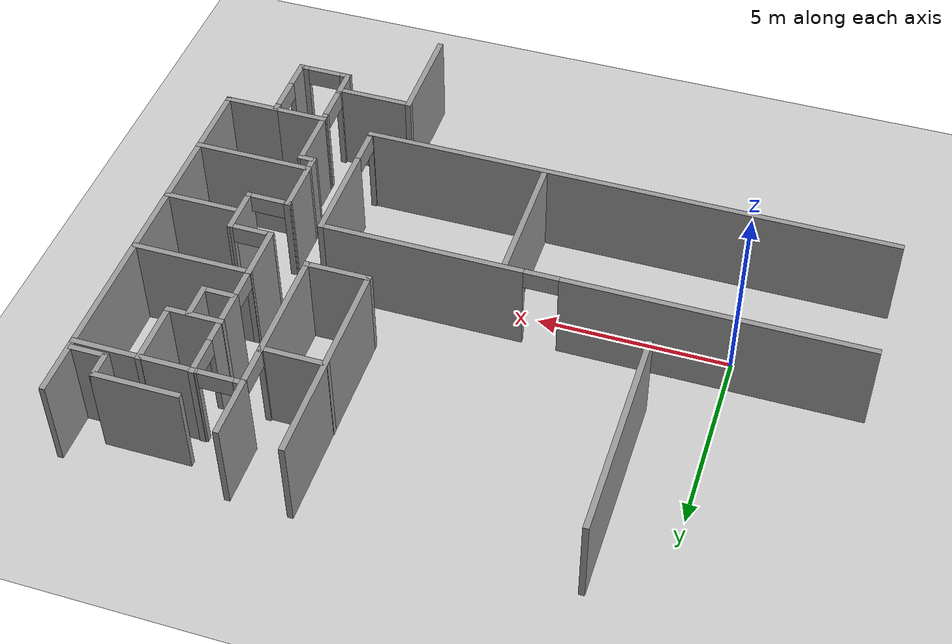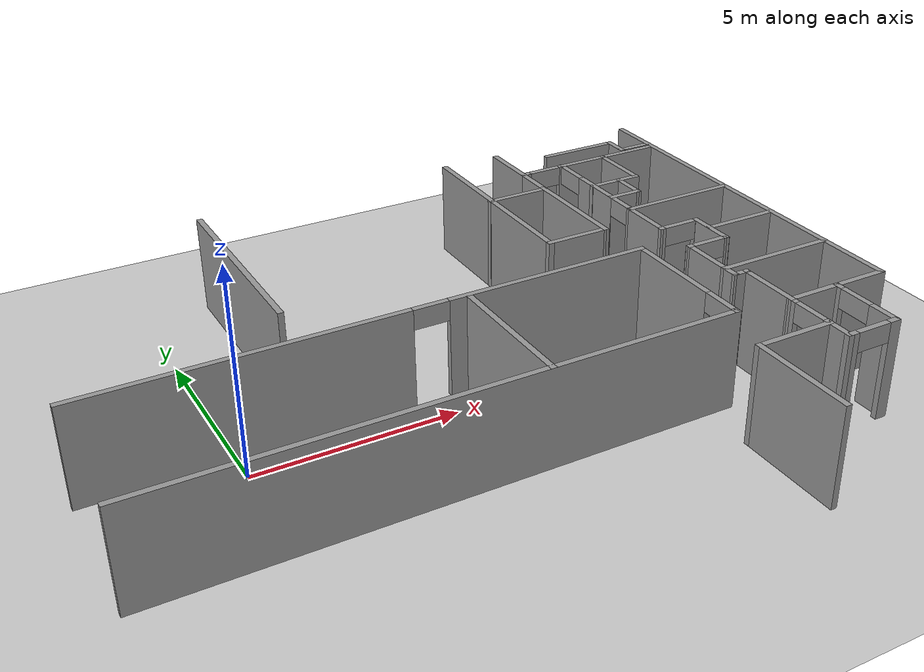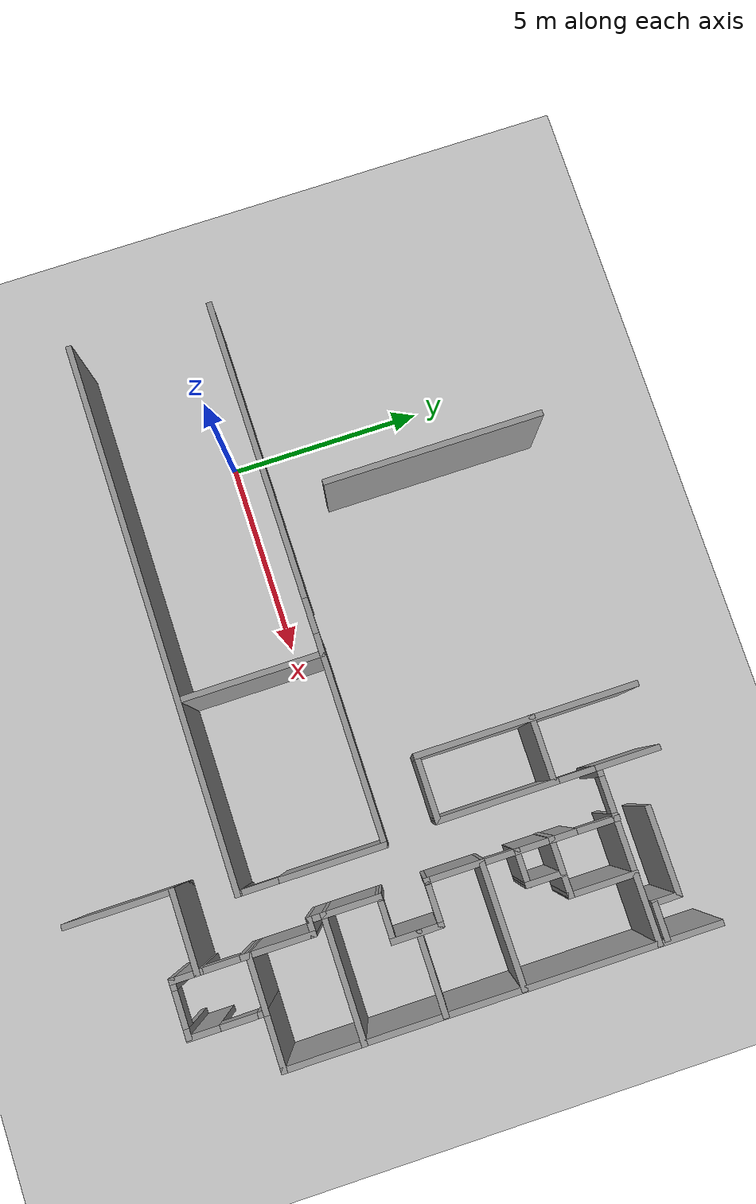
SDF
<sdf version="1.6">
 <world name="default">
  <model name="ground_plane">
   <static>1</static>
   <link name="link">
    <collision name="collision">
     <geometry><plane><normal>0 0 1</normal><size>100 100</size></plane></geometry>
     <surface><friction><ode><mu>100</mu><mu2>50</mu2></ode></friction></surface>
    </collision>
    <visual name="visual">
     <cast_shadows>0</cast_shadows>
     <geometry><plane><normal>0 0 1</normal><size>100 100</size></plane></geometry>
     <material>
      <script><uri>file://media/materials/scripts/gazebo.material</uri><name>Gazebo/Grey</name></script>
     </material>
    </visual>
   </link>
  </model>
  <model name="deh_f1">
   <pose>0.520969 0.357811 0 0 -0 0</pose>
   <link name="Wall_10">
    <collision name="Wall_10_Collision">
     <geometry><box><size>0.75 0.15 2.5</size></box></geometry>
     <pose>0 0 1.25 0 -0 0</pose>
    </collision>
    <visual name="Wall_10_Visual">
     <pose>0 0 1.25 0 -0 0</pose>
     <geometry><box><size>0.75 0.15 2.5</size></box></geometry>
     <material>
      <script><uri>file://media/materials/scripts/gazebo.material</uri><name>Gazebo/Grey</name></script>
      <ambient>1 1 1 1</ambient>
     </material>
    </visual>
    <pose>11.348 -4.92647 0 0 -0 1.5708</pose>
   </link>
   <link name="Wall_107">
    <collision name="Wall_107_Collision">
     <geometry><box><size>5.62515 0.15 2.5</size></box></geometry>
     <pose>0 0 1.25 0 -0 0</pose>
    </collision>
    <visual name="Wall_107_Visual">
     <pose>0 0 1.25 0 -0 0</pose>
     <geometry><box><size>5.62515 0.15 2.5</size></box></geometry>
     <material>
      <script><uri>file://media/materials/scripts/gazebo.material</uri><name>Gazebo/Grey</name></script>
      <ambient>1 1 1 1</ambient>
     </material>
    </visual>
    <pose>1.21165 4.48247 0 0 0 -1.5708</pose>
   </link>
   <link name="Wall_109">
    <collision name="Wall_109_Collision">
     <geometry><box><size>1.75 0.15 2.5</size></box></geometry>
     <pose>0 0 1.25 0 -0 0</pose>
    </collision>
    <visual name="Wall_109_Visual">
     <pose>0 0 1.25 0 -0 0</pose>
     <geometry><box><size>1.75 0.15 2.5</size></box></geometry>
     <material>
      <script><uri>file://media/materials/scripts/gazebo.material</uri><name>Gazebo/Grey</name></script>
      <ambient>1 1 1 1</ambient>
     </material>
    </visual>
    <pose>8.97986 1.75239 0 0 -0 0</pose>
   </link>
   <link name="Wall_110">
    <pose>9.77348 4.47484 0 0 -0 1.57314</pose>
    <visual name="Wall_110_Visual_0">
     <pose>-1.26286 0 1.25 0 -0 0</pose>
     <geometry><box><size>3.06917 0.15 2.5</size></box></geometry>
     <material>
      <script><uri>file://media/materials/scripts/gazebo.material</uri><name>Gazebo/Grey</name></script>
      <ambient>1 1 1 1</ambient>
     </material>
    </visual>
    <collision name="Wall_110_Collision_0">
     <geometry><box><size>3.06917 0.15 2.5</size></box></geometry>
     <pose>-1.26286 0 1.25 0 -0 0</pose>
    </collision>
    <visual name="Wall_110_Visual_1">
     <pose>1.98459 0 1.25 0 -0 0</pose>
     <geometry><box><size>1.62573 0.15 2.5</size></box></geometry>
     <material>
      <script><uri>file://media/materials/scripts/gazebo.material</uri><name>Gazebo/Grey</name></script>
      <ambient>1 1 1 1</ambient>
     </material>
    </visual>
    <collision name="Wall_110_Collision_1">
     <geometry><box><size>1.62573 0.15 2.5</size></box></geometry>
     <pose>1.98459 0 1.25 0 -0 0</pose>
    </collision>
    <visual name="Wall_110_Visual_2">
     <pose>0.721725 0 2.25 0 -0 0</pose>
     <geometry><box><size>0.9 0.15 0.5</size></box></geometry>
     <material>
      <script><uri>file://media/materials/scripts/gazebo.material</uri><name>Gazebo/Grey</name></script>
      <ambient>1 1 1 1</ambient>
     </material>
    </visual>
    <collision name="Wall_110_Collision_2">
     <geometry><box><size>0.9 0.15 0.5</size></box></geometry>
     <pose>0.721725 0 2.25 0 -0 0</pose>
    </collision>
   </link>
   <link name="Wall_114">
    <pose>11.9124 5.72672 0 0 -0 0</pose>
    <visual name="Wall_114_Visual_0">
     <pose>-2.0611 0 1.25 0 -0 0</pose>
     <geometry><box><size>0.273024 0.15 2.5</size></box></geometry>
     <material>
      <script><uri>file://media/materials/scripts/gazebo.material</uri><name>Gazebo/Grey</name></script>
      <ambient>1 1 1 1</ambient>
     </material>
    </visual>
    <collision name="Wall_114_Collision_0">
     <geometry><box><size>0.273024 0.15 2.5</size></box></geometry>
     <pose>-2.0611 0 1.25 0 -0 0</pose>
    </collision>
    <visual name="Wall_114_Visual_1">
     <pose>0.586512 0 1.25 0 -0 0</pose>
     <geometry><box><size>3.2222 0.15 2.5</size></box></geometry>
     <material>
      <script><uri>file://media/materials/scripts/gazebo.material</uri><name>Gazebo/Grey</name></script>
      <ambient>1 1 1 1</ambient>
     </material>
    </visual>
    <collision name="Wall_114_Collision_1">
     <geometry><box><size>3.2222 0.15 2.5</size></box></geometry>
     <pose>0.586512 0 1.25 0 -0 0</pose>
    </collision>
    <visual name="Wall_114_Visual_2">
     <pose>-1.47459 0 2.25 0 -0 0</pose>
     <geometry><box><size>0.9 0.15 0.5</size></box></geometry>
     <material>
      <script><uri>file://media/materials/scripts/gazebo.material</uri><name>Gazebo/Grey</name></script>
      <ambient>1 1 1 1</ambient>
     </material>
    </visual>
    <collision name="Wall_114_Collision_2">
     <geometry><box><size>0.9 0.15 0.5</size></box></geometry>
     <pose>-1.47459 0 2.25 0 -0 0</pose>
    </collision>
   </link>
   <link name="Wall_116">
    <pose>11.0229 4.08144 0 0 0 -1.5708</pose>
    <visual name="Wall_116_Visual_0">
     <pose>-1.65988 0 1.25 0 -0 0</pose>
     <geometry><box><size>0.160376 0.15 2.5</size></box></geometry>
     <material>
      <script><uri>file://media/materials/scripts/gazebo.material</uri><name>Gazebo/Grey</name></script>
      <ambient>1 1 1 1</ambient>
     </material>
    </visual>
    <collision name="Wall_116_Collision_0">
     <geometry><box><size>0.160376 0.15 2.5</size></box></geometry>
     <pose>-1.65988 0 1.25 0 -0 0</pose>
    </collision>
    <visual name="Wall_116_Visual_1">
     <pose>0.093656 0 1.25 0 -0 0</pose>
     <geometry><box><size>1.54669 0.15 2.5</size></box></geometry>
     <material>
      <script><uri>file://media/materials/scripts/gazebo.material</uri><name>Gazebo/Grey</name></script>
      <ambient>1 1 1 1</ambient>
     </material>
    </visual>
    <collision name="Wall_116_Collision_1">
     <geometry><box><size>1.54669 0.15 2.5</size></box></geometry>
     <pose>0.093656 0 1.25 0 -0 0</pose>
    </collision>
    <visual name="Wall_116_Visual_2">
     <pose>1.66388 0 1.25 0 -0 0</pose>
     <geometry><box><size>0.152369 0.15 2.5</size></box></geometry>
     <material>
      <script><uri>file://media/materials/scripts/gazebo.material</uri><name>Gazebo/Grey</name></script>
      <ambient>1 1 1 1</ambient>
     </material>
    </visual>
    <collision name="Wall_116_Collision_2">
     <geometry><box><size>0.152369 0.15 2.5</size></box></geometry>
     <pose>1.66388 0 1.25 0 -0 0</pose>
    </collision>
    <visual name="Wall_116_Visual_3">
     <pose>-1.12969 0 2.25 0 -0 0</pose>
     <geometry><box><size>0.9 0.15 0.5</size></box></geometry>
     <material>
      <script><uri>file://media/materials/scripts/gazebo.material</uri><name>Gazebo/Grey</name></script>
      <ambient>1 1 1 1</ambient>
     </material>
    </visual>
    <collision name="Wall_116_Collision_3">
     <geometry><box><size>0.9 0.15 0.5</size></box></geometry>
     <pose>-1.12969 0 2.25 0 -0 0</pose>
    </collision>
    <visual name="Wall_116_Visual_4">
     <pose>1.22735 0 2.25 0 -0 0</pose>
     <geometry><box><size>0.720696 0.15 0.5</size></box></geometry>
     <material>
      <script><uri>file://media/materials/scripts/gazebo.material</uri><name>Gazebo/Grey</name></script>
      <ambient>1 1 1 1</ambient>
     </material>
    </visual>
    <collision name="Wall_116_Collision_4">
     <geometry><box><size>0.720696 0.15 0.5</size></box></geometry>
     <pose>1.22735 0 2.25 0 -0 0</pose>
    </collision>
   </link>
   <link name="Wall_117">
    <collision name="Wall_117_Collision">
     <geometry><box><size>3.16787 0.15 2.5</size></box></geometry>
     <pose>0 0 1.25 0 -0 0</pose>
    </collision>
    <visual name="Wall_117_Visual">
     <pose>0 0 1.25 0 -0 0</pose>
     <geometry><box><size>3.16787 0.15 2.5</size></box></geometry>
     <material>
      <script><uri>file://media/materials/scripts/gazebo.material</uri><name>Gazebo/Grey</name></script>
      <ambient>1 1 1 1</ambient>
     </material>
    </visual>
    <pose>12.5218 2.4204 0 0 -0 0.002627</pose>
   </link>
   <link name="Wall_119">
    <collision name="Wall_119_Collision">
     <geometry><box><size>1.5 0.15 2.5</size></box></geometry>
     <pose>0 0 1.25 0 -0 0</pose>
    </collision>
    <visual name="Wall_119_Visual">
     <pose>0 0 1.25 0 -0 0</pose>
     <geometry><box><size>1.5 0.15 2.5</size></box></geometry>
     <material>
      <script><uri>file://media/materials/scripts/gazebo.material</uri><name>Gazebo/Grey</name></script>
      <ambient>1 1 1 1</ambient>
     </material>
    </visual>
    <pose>11.6872 4.13684 0 0 -0 0</pose>
   </link>
   <link name="Wall_12">
    <collision name="Wall_12_Collision">
     <geometry><box><size>2.75 0.15 2.5</size></box></geometry>
     <pose>0 0 1.25 0 -0 0</pose>
    </collision>
    <visual name="Wall_12_Visual">
     <pose>0 0 1.25 0 -0 0</pose>
     <geometry><box><size>2.75 0.15 2.5</size></box></geometry>
     <material>
      <script><uri>file://media/materials/scripts/gazebo.material</uri><name>Gazebo/Grey</name></script>
      <ambient>1 1 1 1</ambient>
     </material>
    </visual>
    <pose>9.39804 -5.92647 0 0 -0 1.5708</pose>
   </link>
   <link name="Wall_120">
    <collision name="Wall_120_Collision">
     <geometry><box><size>1.75 0.15 2.5</size></box></geometry>
     <pose>0 0 1.25 0 -0 0</pose>
    </collision>
    <visual name="Wall_120_Visual">
     <pose>0 0 1.25 0 -0 0</pose>
     <geometry><box><size>1.75 0.15 2.5</size></box></geometry>
     <material>
      <script><uri>file://media/materials/scripts/gazebo.material</uri><name>Gazebo/Grey</name></script>
      <ambient>1 1 1 1</ambient>
     </material>
    </visual>
    <pose>12.3622 4.93684 0 0 -0 1.5708</pose>
   </link>
   <link name="Wall_122">
    <collision name="Wall_122_Collision">
     <geometry><box><size>1 0.15 2.5</size></box></geometry>
     <pose>0 0 1.25 0 -0 0</pose>
    </collision>
    <visual name="Wall_122_Visual">
     <pose>0 0 1.25 0 -0 0</pose>
     <geometry><box><size>1 0.15 2.5</size></box></geometry>
     <material>
      <script><uri>file://media/materials/scripts/gazebo.material</uri><name>Gazebo/Grey</name></script>
      <ambient>1 1 1 1</ambient>
     </material>
    </visual>
    <pose>11.8301 3.70041 0 0 0 -1.5708</pose>
   </link>
   <link name="Wall_123">
    <collision name="Wall_123_Collision">
     <geometry><box><size>0.951518 0.15 2.5</size></box></geometry>
     <pose>0 0 1.25 0 -0 0</pose>
    </collision>
    <visual name="Wall_123_Visual">
     <pose>0 0 1.25 0 -0 0</pose>
     <geometry><box><size>0.951518 0.15 2.5</size></box></geometry>
     <material>
      <script><uri>file://media/materials/scripts/gazebo.material</uri><name>Gazebo/Grey</name></script>
      <ambient>1 1 1 1</ambient>
     </material>
    </visual>
    <pose>11.4294 3.27697 0 0 -0 3.1377</pose>
   </link>
   <link name="Wall_125">
    <collision name="Wall_125_Collision">
     <geometry><box><size>1.75 0.15 2.5</size></box></geometry>
     <pose>0 0 1.25 0 -0 0</pose>
    </collision>
    <visual name="Wall_125_Visual">
     <pose>0 0 1.25 0 -0 0</pose>
     <geometry><box><size>1.75 0.15 2.5</size></box></geometry>
     <material>
      <script><uri>file://media/materials/scripts/gazebo.material</uri><name>Gazebo/Grey</name></script>
      <ambient>1 1 1 1</ambient>
     </material>
    </visual>
    <pose>8.97011 4.62775 0 0 -0 3.14159</pose>
   </link>
   <link name="Wall_127">
    <collision name="Wall_127_Collision">
     <geometry><box><size>14 0.15 2.5</size></box></geometry>
     <pose>0 0 1.25 0 -0 0</pose>
    </collision>
    <visual name="Wall_127_Visual">
     <pose>0 0 1.25 0 -0 0</pose>
     <geometry><box><size>14 0.15 2.5</size></box></geometry>
     <material>
      <script><uri>file://media/materials/scripts/gazebo.material</uri><name>Gazebo/Grey</name></script>
      <ambient>1 1 1 1</ambient>
     </material>
    </visual>
    <pose>3.00654 -3.2072 0 0 -0 0</pose>
   </link>
   <link name="Wall_128">
    <pose>9.93154 -1.4072 0 0 -0 1.5708</pose>
    <visual name="Wall_128_Visual_0">
     <pose>-1.78467 0 1.25 0 -0 0</pose>
     <geometry><box><size>0.180652 0.15 2.5</size></box></geometry>
     <material>
      <script><uri>file://media/materials/scripts/gazebo.material</uri><name>Gazebo/Grey</name></script>
      <ambient>1 1 1 1</ambient>
     </material>
    </visual>
    <collision name="Wall_128_Collision_0">
     <geometry><box><size>0.180652 0.15 2.5</size></box></geometry>
     <pose>-1.78467 0 1.25 0 -0 0</pose>
    </collision>
    <visual name="Wall_128_Visual_1">
     <pose>0.540326 0 1.25 0 -0 0</pose>
     <geometry><box><size>2.66935 0.15 2.5</size></box></geometry>
     <material>
      <script><uri>file://media/materials/scripts/gazebo.material</uri><name>Gazebo/Grey</name></script>
      <ambient>1 1 1 1</ambient>
     </material>
    </visual>
    <collision name="Wall_128_Collision_1">
     <geometry><box><size>2.66935 0.15 2.5</size></box></geometry>
     <pose>0.540326 0 1.25 0 -0 0</pose>
    </collision>
    <visual name="Wall_128_Visual_2">
     <pose>-1.24435 0 2.25 0 -0 0</pose>
     <geometry><box><size>0.9 0.15 0.5</size></box></geometry>
     <material>
      <script><uri>file://media/materials/scripts/gazebo.material</uri><name>Gazebo/Grey</name></script>
      <ambient>1 1 1 1</ambient>
     </material>
    </visual>
    <collision name="Wall_128_Collision_2">
     <geometry><box><size>0.9 0.15 0.5</size></box></geometry>
     <pose>-1.24435 0 2.25 0 -0 0</pose>
    </collision>
   </link>
   <link name="Wall_129">
    <pose>3.00654 0.392797 0 0 -0 3.14159</pose>
    <visual name="Wall_129_Visual_0">
     <pose>-4.33483 0 1.25 0 -0 0</pose>
     <geometry><box><size>5.33035 0.15 2.5</size></box></geometry>
     <material>
      <script><uri>file://media/materials/scripts/gazebo.material</uri><name>Gazebo/Grey</name></script>
      <ambient>1 1 1 1</ambient>
     </material>
    </visual>
    <collision name="Wall_129_Collision_0">
     <geometry><box><size>5.33035 0.15 2.5</size></box></geometry>
     <pose>-4.33483 0 1.25 0 -0 0</pose>
    </collision>
    <visual name="Wall_129_Visual_1">
     <pose>3.11517 0 1.25 0 -0 0</pose>
     <geometry><box><size>7.76965 0.15 2.5</size></box></geometry>
     <material>
      <script><uri>file://media/materials/scripts/gazebo.material</uri><name>Gazebo/Grey</name></script>
      <ambient>1 1 1 1</ambient>
     </material>
    </visual>
    <collision name="Wall_129_Collision_1">
     <geometry><box><size>7.76965 0.15 2.5</size></box></geometry>
     <pose>3.11517 0 1.25 0 -0 0</pose>
    </collision>
    <visual name="Wall_129_Visual_2">
     <pose>-1.21965 0 2.25 0 -0 0</pose>
     <geometry><box><size>0.9 0.15 0.5</size></box></geometry>
     <material>
      <script><uri>file://media/materials/scripts/gazebo.material</uri><name>Gazebo/Grey</name></script>
      <ambient>1 1 1 1</ambient>
     </material>
    </visual>
    <collision name="Wall_129_Collision_2">
     <geometry><box><size>0.9 0.15 0.5</size></box></geometry>
     <pose>-1.21965 0 2.25 0 -0 0</pose>
    </collision>
   </link>
   <link name="Wall_13">
    <collision name="Wall_13_Collision">
     <geometry><box><size>2.1 0.15 2.5</size></box></geometry>
     <pose>0 0 1.25 0 -0 0</pose>
    </collision>
    <visual name="Wall_13_Visual">
     <pose>0 0 1.25 0 -0 0</pose>
     <geometry><box><size>2.1 0.15 2.5</size></box></geometry>
     <material>
      <script><uri>file://media/materials/scripts/gazebo.material</uri><name>Gazebo/Grey</name></script>
      <ambient>1 1 1 1</ambient>
     </material>
    </visual>
    <pose>10.373 -4.62647 0 0 -0 0</pose>
   </link>
   <link name="Wall_132">
    <collision name="Wall_132_Collision">
     <geometry><box><size>3.7189 0.15 2.5</size></box></geometry>
     <pose>0 0 1.25 0 -0 0</pose>
    </collision>
    <visual name="Wall_132_Visual">
     <pose>0 0 1.25 0 -0 0</pose>
     <geometry><box><size>3.7189 0.15 2.5</size></box></geometry>
     <material>
      <script><uri>file://media/materials/scripts/gazebo.material</uri><name>Gazebo/Grey</name></script>
      <ambient>1 1 1 1</ambient>
     </material>
    </visual>
    <pose>5.18263 -1.4209 0 0 0 -1.56951</pose>
   </link>
   <link name="Wall_134">
    <collision name="Wall_134_Collision">
     <geometry><box><size>2.25 0.15 2.5</size></box></geometry>
     <pose>0 0 1.25 0 -0 0</pose>
    </collision>
    <visual name="Wall_134_Visual">
     <pose>0 0 1.25 0 -0 0</pose>
     <geometry><box><size>2.25 0.15 2.5</size></box></geometry>
     <material>
      <script><uri>file://media/materials/scripts/gazebo.material</uri><name>Gazebo/Grey</name></script>
      <ambient>1 1 1 1</ambient>
     </material>
    </visual>
    <pose>12.0831 6.52528 0 0 -0 0</pose>
   </link>
   <link name="Wall_135">
    <collision name="Wall_135_Collision">
     <geometry><box><size>0.75 0.15 2.5</size></box></geometry>
     <pose>0 0 1.25 0 -0 0</pose>
    </collision>
    <visual name="Wall_135_Visual">
     <pose>0 0 1.25 0 -0 0</pose>
     <geometry><box><size>0.75 0.15 2.5</size></box></geometry>
     <material>
      <script><uri>file://media/materials/scripts/gazebo.material</uri><name>Gazebo/Grey</name></script>
      <ambient>1 1 1 1</ambient>
     </material>
    </visual>
    <pose>13.1331 6.22528 0 0 0 -1.5708</pose>
   </link>
   <link name="Wall_136">
    <collision name="Wall_136_Collision">
     <geometry><box><size>1 0.15 2.5</size></box></geometry>
     <pose>0 0 1.25 0 -0 0</pose>
    </collision>
    <visual name="Wall_136_Visual">
     <pose>0 0 1.25 0 -0 0</pose>
     <geometry><box><size>1 0.15 2.5</size></box></geometry>
     <material>
      <script><uri>file://media/materials/scripts/gazebo.material</uri><name>Gazebo/Grey</name></script>
      <ambient>1 1 1 1</ambient>
     </material>
    </visual>
    <pose>13.5581 5.92528 0 0 -0 0</pose>
   </link>
   <link name="Wall_140">
    <collision name="Wall_140_Collision">
     <geometry><box><size>1.5 0.15 2.5</size></box></geometry>
     <pose>0 0 1.25 0 -0 0</pose>
    </collision>
    <visual name="Wall_140_Visual">
     <pose>0 0 1.25 0 -0 0</pose>
     <geometry><box><size>1.5 0.15 2.5</size></box></geometry>
     <material>
      <script><uri>file://media/materials/scripts/gazebo.material</uri><name>Gazebo/Grey</name></script>
      <ambient>1 1 1 1</ambient>
     </material>
    </visual>
    <pose>11.0129 1.74144 0 0 0 -1.5708</pose>
   </link>
   <link name="Wall_149">
    <collision name="Wall_149_Collision">
     <geometry><box><size>1.5 0.15 2.5</size></box></geometry>
     <pose>0 0 1.25 0 -0 0</pose>
    </collision>
    <visual name="Wall_149_Visual">
     <pose>0 0 1.25 0 -0 0</pose>
     <geometry><box><size>1.5 0.15 2.5</size></box></geometry>
     <material>
      <script><uri>file://media/materials/scripts/gazebo.material</uri><name>Gazebo/Grey</name></script>
      <ambient>1 1 1 1</ambient>
     </material>
    </visual>
    <pose>11.0148 -0.77909 0 0 -0 1.5708</pose>
   </link>
   <link name="Wall_150">
    <pose>11.5441 -0.098561 0 0 0 -0.001976</pose>
    <visual name="Wall_150_Visual_0">
     <pose>-0.517787 0 1.25 0 -0 0</pose>
     <geometry><box><size>0.173037 0.15 2.5</size></box></geometry>
     <material>
      <script><uri>file://media/materials/scripts/gazebo.material</uri><name>Gazebo/Grey</name></script>
      <ambient>1 1 1 1</ambient>
     </material>
    </visual>
    <collision name="Wall_150_Collision_0">
     <geometry><box><size>0.173037 0.15 2.5</size></box></geometry>
     <pose>-0.517787 0 1.25 0 -0 0</pose>
    </collision>
    <visual name="Wall_150_Visual_1">
     <pose>0.536519 0 1.25 0 -0 0</pose>
     <geometry><box><size>0.135573 0.15 2.5</size></box></geometry>
     <material>
      <script><uri>file://media/materials/scripts/gazebo.material</uri><name>Gazebo/Grey</name></script>
      <ambient>1 1 1 1</ambient>
     </material>
    </visual>
    <collision name="Wall_150_Collision_1">
     <geometry><box><size>0.135573 0.15 2.5</size></box></geometry>
     <pose>0.536519 0 1.25 0 -0 0</pose>
    </collision>
    <visual name="Wall_150_Visual_2">
     <pose>0.018732 0 2.25 0 -0 0</pose>
     <geometry><box><size>0.9 0.15 0.5</size></box></geometry>
     <material>
      <script><uri>file://media/materials/scripts/gazebo.material</uri><name>Gazebo/Grey</name></script>
      <ambient>1 1 1 1</ambient>
     </material>
    </visual>
    <collision name="Wall_150_Collision_2">
     <geometry><box><size>0.9 0.15 0.5</size></box></geometry>
     <pose>0.018732 0 2.25 0 -0 0</pose>
    </collision>
   </link>
   <link name="Wall_152">
    <pose>11.5464 1.06532 0 0 0 -0.002099</pose>
    <visual name="Wall_152_Visual_0">
     <pose>-0.526593 0 1.25 0 -0 0</pose>
     <geometry><box><size>0.163947 0.15 2.5</size></box></geometry>
     <material>
      <script><uri>file://media/materials/scripts/gazebo.material</uri><name>Gazebo/Grey</name></script>
      <ambient>1 1 1 1</ambient>
     </material>
    </visual>
    <collision name="Wall_152_Collision_0">
     <geometry><box><size>0.163947 0.15 2.5</size></box></geometry>
     <pose>-0.526593 0 1.25 0 -0 0</pose>
    </collision>
    <visual name="Wall_152_Visual_1">
     <pose>0.531974 0 1.25 0 -0 0</pose>
     <geometry><box><size>0.153186 0.15 2.5</size></box></geometry>
     <material>
      <script><uri>file://media/materials/scripts/gazebo.material</uri><name>Gazebo/Grey</name></script>
      <ambient>1 1 1 1</ambient>
     </material>
    </visual>
    <collision name="Wall_152_Collision_1">
     <geometry><box><size>0.153186 0.15 2.5</size></box></geometry>
     <pose>0.531974 0 1.25 0 -0 0</pose>
    </collision>
    <visual name="Wall_152_Visual_2">
     <pose>0.005381 0 2.25 0 -0 0</pose>
     <geometry><box><size>0.9 0.15 0.5</size></box></geometry>
     <material>
      <script><uri>file://media/materials/scripts/gazebo.material</uri><name>Gazebo/Grey</name></script>
      <ambient>1 1 1 1</ambient>
     </material>
    </visual>
    <collision name="Wall_152_Collision_2">
     <geometry><box><size>0.9 0.15 0.5</size></box></geometry>
     <pose>0.005381 0 2.25 0 -0 0</pose>
    </collision>
   </link>
   <link name="Wall_153">
    <collision name="Wall_153_Collision">
     <geometry><box><size>1.3138 0.15 2.5</size></box></geometry>
     <pose>0 0 1.25 0 -0 0</pose>
    </collision>
    <visual name="Wall_153_Visual">
     <pose>0 0 1.25 0 -0 0</pose>
     <geometry><box><size>1.3138 0.15 2.5</size></box></geometry>
     <material>
      <script><uri>file://media/materials/scripts/gazebo.material</uri><name>Gazebo/Grey</name></script>
      <ambient>1 1 1 1</ambient>
     </material>
    </visual>
    <pose>12.08 0.482295 0 0 0 -1.5708</pose>
   </link>
   <link name="Wall_155">
    <collision name="Wall_155_Collision">
     <geometry><box><size>2.09003 0.15 2.5</size></box></geometry>
     <pose>0 0 1.25 0 -0 0</pose>
    </collision>
    <visual name="Wall_155_Visual">
     <pose>0 0 1.25 0 -0 0</pose>
     <geometry><box><size>2.09003 0.15 2.5</size></box></geometry>
     <material>
      <script><uri>file://media/materials/scripts/gazebo.material</uri><name>Gazebo/Grey</name></script>
      <ambient>1 1 1 1</ambient>
     </material>
    </visual>
    <pose>13.0619 0.519605 0 0 -0 0</pose>
   </link>
   <link name="Wall_157">
    <collision name="Wall_157_Collision">
     <geometry><box><size>3.18706 0.15 2.5</size></box></geometry>
     <pose>0 0 1.25 0 -0 0</pose>
    </collision>
    <visual name="Wall_157_Visual">
     <pose>0 0 1.25 0 -0 0</pose>
     <geometry><box><size>3.18706 0.15 2.5</size></box></geometry>
     <material>
      <script><uri>file://media/materials/scripts/gazebo.material</uri><name>Gazebo/Grey</name></script>
      <ambient>1 1 1 1</ambient>
     </material>
    </visual>
    <pose>12.5333 -1.45224 0 0 -0 0.001217</pose>
   </link>
   <link name="Wall_159">
    <collision name="Wall_159_Collision">
     <geometry><box><size>0.5 0.15 2.5</size></box></geometry>
     <pose>0 0 1.25 0 -0 0</pose>
    </collision>
    <visual name="Wall_159_Visual">
     <pose>0 0 1.25 0 -0 0</pose>
     <geometry><box><size>0.5 0.15 2.5</size></box></geometry>
     <material>
      <script><uri>file://media/materials/scripts/gazebo.material</uri><name>Gazebo/Grey</name></script>
      <ambient>1 1 1 1</ambient>
     </material>
    </visual>
    <pose>11.0148 -1.62909 0 0 0 -1.5708</pose>
   </link>
   <link name="Wall_16">
    <collision name="Wall_16_Collision">
     <geometry><box><size>1.5 0.15 2.5</size></box></geometry>
     <pose>0 0 1.25 0 -0 0</pose>
    </collision>
    <visual name="Wall_16_Visual">
     <pose>0 0 1.25 0 -0 0</pose>
     <geometry><box><size>1.5 0.15 2.5</size></box></geometry>
     <material>
      <script><uri>file://media/materials/scripts/gazebo.material</uri><name>Gazebo/Grey</name></script>
      <ambient>1 1 1 1</ambient>
     </material>
    </visual>
    <pose>12.023 -3.37647 0 0 -0 3.14159</pose>
   </link>
   <link name="Wall_160">
    <collision name="Wall_160_Collision">
     <geometry><box><size>0.484545 0.15 2.5</size></box></geometry>
     <pose>0 0 1.25 0 -0 0</pose>
    </collision>
    <visual name="Wall_160_Visual">
     <pose>0 0 1.25 0 -0 0</pose>
     <geometry><box><size>0.484545 0.15 2.5</size></box></geometry>
     <material>
      <script><uri>file://media/materials/scripts/gazebo.material</uri><name>Gazebo/Grey</name></script>
      <ambient>1 1 1 1</ambient>
     </material>
    </visual>
    <pose>11.182 -1.80498 0 0 0 -0.005299</pose>
   </link>
   <link name="Wall_161">
    <collision name="Wall_161_Collision">
     <geometry><box><size>1.72061 0.15 2.5</size></box></geometry>
     <pose>0 0 1.25 0 -0 0</pose>
    </collision>
    <visual name="Wall_161_Visual">
     <pose>0 0 1.25 0 -0 0</pose>
     <geometry><box><size>1.72061 0.15 2.5</size></box></geometry>
     <material>
      <script><uri>file://media/materials/scripts/gazebo.material</uri><name>Gazebo/Grey</name></script>
      <ambient>1 1 1 1</ambient>
     </material>
    </visual>
    <pose>11.3486 -2.59117 0 0 0 -1.57157</pose>
   </link>
   <link name="Wall_17">
    <pose>11.348 -4.00147 0 0 0 -1.5708</pose>
    <visual name="Wall_17_Visual_0">
     <pose>-0.560114 0 1.25 0 -0 0</pose>
     <geometry><box><size>0.279772 0.15 2.5</size></box></geometry>
     <material>
      <script><uri>file://media/materials/scripts/gazebo.material</uri><name>Gazebo/Grey</name></script>
      <ambient>1 1 1 1</ambient>
     </material>
    </visual>
    <collision name="Wall_17_Collision_0">
     <geometry><box><size>0.279772 0.15 2.5</size></box></geometry>
     <pose>-0.560114 0 1.25 0 -0 0</pose>
    </collision>
    <visual name="Wall_17_Visual_1">
     <pose>0.589886 0 1.25 0 -0 0</pose>
     <geometry><box><size>0.220228 0.15 2.5</size></box></geometry>
     <material>
      <script><uri>file://media/materials/scripts/gazebo.material</uri><name>Gazebo/Grey</name></script>
      <ambient>1 1 1 1</ambient>
     </material>
    </visual>
    <collision name="Wall_17_Collision_1">
     <geometry><box><size>0.220228 0.15 2.5</size></box></geometry>
     <pose>0.589886 0 1.25 0 -0 0</pose>
    </collision>
    <visual name="Wall_17_Visual_2">
     <pose>0.029772 0 2.25 0 -0 0</pose>
     <geometry><box><size>0.9 0.15 0.5</size></box></geometry>
     <material>
      <script><uri>file://media/materials/scripts/gazebo.material</uri><name>Gazebo/Grey</name></script>
      <ambient>1 1 1 1</ambient>
     </material>
    </visual>
    <collision name="Wall_17_Collision_2">
     <geometry><box><size>0.9 0.15 0.5</size></box></geometry>
     <pose>0.029772 0 2.25 0 -0 0</pose>
    </collision>
   </link>
   <link name="Wall_6">
    <collision name="Wall_6_Collision">
     <geometry><box><size>10.75 0.15 2.5</size></box></geometry>
     <pose>0 0 1.25 0 -0 0</pose>
    </collision>
    <visual name="Wall_6_Visual">
     <pose>0 0 1.25 0 -0 0</pose>
     <geometry><box><size>10.75 0.15 2.5</size></box></geometry>
     <material>
      <script><uri>file://media/materials/scripts/gazebo.material</uri><name>Gazebo/Grey</name></script>
      <ambient>1 1 1 1</ambient>
     </material>
    </visual>
    <pose>14.048 1.92353 0 0 0 -1.5708</pose>
   </link>
   <link name="Wall_7">
    <collision name="Wall_7_Collision">
     <geometry><box><size>1.5 0.15 2.5</size></box></geometry>
     <pose>0 0 1.25 0 -0 0</pose>
    </collision>
    <visual name="Wall_7_Visual">
     <pose>0 0 1.25 0 -0 0</pose>
     <geometry><box><size>1.5 0.15 2.5</size></box></geometry>
     <material>
      <script><uri>file://media/materials/scripts/gazebo.material</uri><name>Gazebo/Grey</name></script>
      <ambient>1 1 1 1</ambient>
     </material>
    </visual>
    <pose>13.373 -3.37647 0 0 -0 3.14159</pose>
   </link>
   <link name="Wall_8">
    <pose>12.698 -4.30147 0 0 0 -1.5708</pose>
    <visual name="Wall_8_Visual_0">
     <pose>-0.863116 0 1.25 0 -0 0</pose>
     <geometry><box><size>0.273768 0.15 2.5</size></box></geometry>
     <material>
      <script><uri>file://media/materials/scripts/gazebo.material</uri><name>Gazebo/Grey</name></script>
      <ambient>1 1 1 1</ambient>
     </material>
    </visual>
    <collision name="Wall_8_Collision_0">
     <geometry><box><size>0.273768 0.15 2.5</size></box></geometry>
     <pose>-0.863116 0 1.25 0 -0 0</pose>
    </collision>
    <visual name="Wall_8_Visual_1">
     <pose>0.586884 0 1.25 0 -0 0</pose>
     <geometry><box><size>0.826232 0.15 2.5</size></box></geometry>
     <material>
      <script><uri>file://media/materials/scripts/gazebo.material</uri><name>Gazebo/Grey</name></script>
      <ambient>1 1 1 1</ambient>
     </material>
    </visual>
    <collision name="Wall_8_Collision_1">
     <geometry><box><size>0.826232 0.15 2.5</size></box></geometry>
     <pose>0.586884 0 1.25 0 -0 0</pose>
    </collision>
    <visual name="Wall_8_Visual_2">
     <pose>-0.276232 0 2.25 0 -0 0</pose>
     <geometry><box><size>0.9 0.15 0.5</size></box></geometry>
     <material>
      <script><uri>file://media/materials/scripts/gazebo.material</uri><name>Gazebo/Grey</name></script>
      <ambient>1 1 1 1</ambient>
     </material>
    </visual>
    <collision name="Wall_8_Collision_2">
     <geometry><box><size>0.9 0.15 0.5</size></box></geometry>
     <pose>-0.276232 0 2.25 0 -0 0</pose>
    </collision>
   </link>
   <link name="Wall_9">
    <pose>12.023 -5.22647 0 0 -0 3.14159</pose>
    <visual name="Wall_9_Visual_0">
     <pose>-0.600009 0 1.25 0 -0 0</pose>
     <geometry><box><size>0.299982 0.15 2.5</size></box></geometry>
     <material>
      <script><uri>file://media/materials/scripts/gazebo.material</uri><name>Gazebo/Grey</name></script>
      <ambient>1 1 1 1</ambient>
     </material>
    </visual>
    <collision name="Wall_9_Collision_0">
     <geometry><box><size>0.299982 0.15 2.5</size></box></geometry>
     <pose>-0.600009 0 1.25 0 -0 0</pose>
    </collision>
    <visual name="Wall_9_Visual_1">
     <pose>0.599991 0 1.25 0 -0 0</pose>
     <geometry><box><size>0.300018 0.15 2.5</size></box></geometry>
     <material>
      <script><uri>file://media/materials/scripts/gazebo.material</uri><name>Gazebo/Grey</name></script>
      <ambient>1 1 1 1</ambient>
     </material>
    </visual>
    <collision name="Wall_9_Collision_1">
     <geometry><box><size>0.300018 0.15 2.5</size></box></geometry>
     <pose>0.599991 0 1.25 0 -0 0</pose>
    </collision>
    <visual name="Wall_9_Visual_2">
     <pose>-1.8e-05 0 2.25 0 -0 0</pose>
     <geometry><box><size>0.9 0.15 0.5</size></box></geometry>
     <material>
      <script><uri>file://media/materials/scripts/gazebo.material</uri><name>Gazebo/Grey</name></script>
      <ambient>1 1 1 1</ambient>
     </material>
    </visual>
    <collision name="Wall_9_Collision_2">
     <geometry><box><size>0.9 0.15 0.5</size></box></geometry>
     <pose>-1.8e-05 0 2.25 0 -0 0</pose>
    </collision>
   </link>
   <link name="Wall_95">
    <collision name="Wall_95_Collision">
     <geometry><box><size>5.61193 0.15 2.5</size></box></geometry>
     <pose>0 0 1.25 0 -0 0</pose>
    </collision>
    <visual name="Wall_95_Visual">
     <pose>0 0 1.25 0 -0 0</pose>
     <geometry><box><size>5.61193 0.15 2.5</size></box></geometry>
     <material>
      <script><uri>file://media/materials/scripts/gazebo.material</uri><name>Gazebo/Grey</name></script>
      <ambient>1 1 1 1</ambient>
     </material>
    </visual>
    <pose>8.18016 4.48324 0 0 -0 1.57069</pose>
   </link>
   <static>1</static>
  </model>
 </world>
</sdf>
